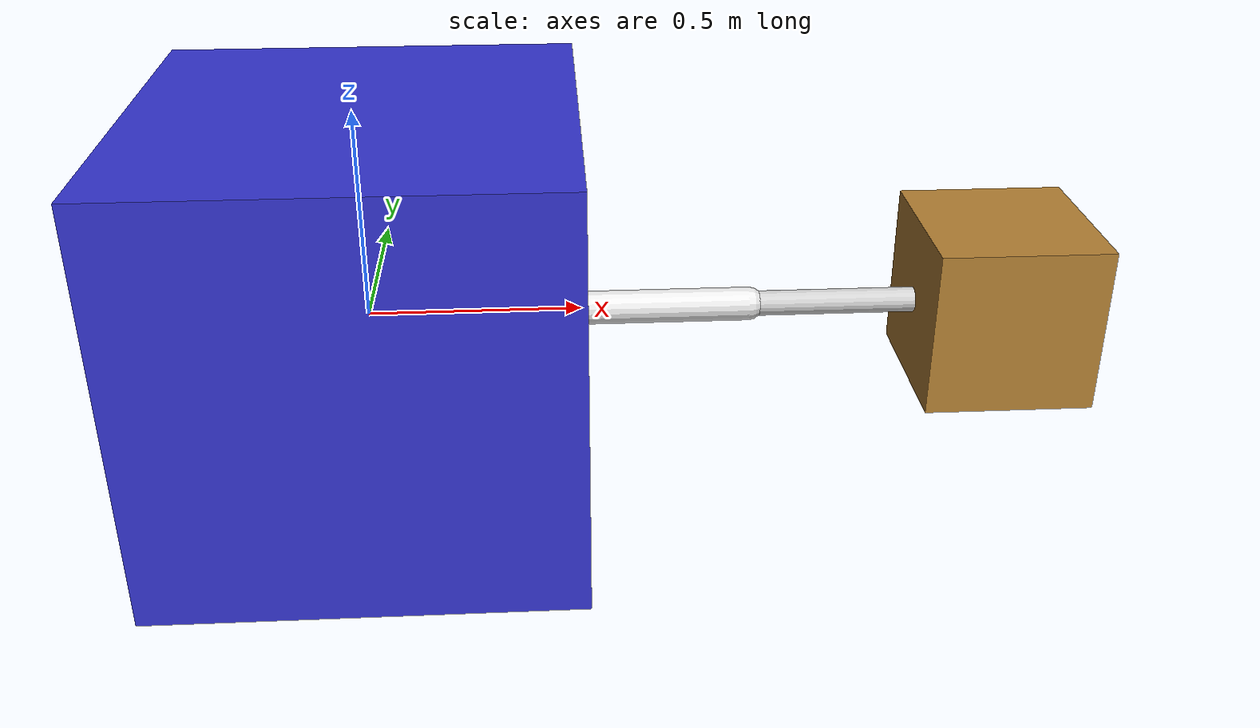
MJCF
<mujoco model="space_debris_manipulator">
  <compiler angle="radian" coordinate="local"/>
  <option gravity="0 0 0" timestep="0.001"/>
  <worldbody>
    <light directional="true" pos="0 0 10" dir="0 0 -1"/>
    <!-- Tumbling Debris Target -->
    <body name="debris" pos="1.5 0 0">
      <freejoint name="debris_joint"/>
      <geom name="debris_geom" type="box" size="0.2 0.2 0.2" rgba="0.7 0.5 0.2 1" mass="15.0"/>
    </body>
    <!-- Chaser Satellite Base -->
    <body name="chaser_satellite" pos="0 0 0">
      <freejoint name="chaser_joint"/>
      <geom name="chaser_body" type="box" size="0.5 0.5 0.5" rgba="0.2 0.2 0.8 1" mass="120.0"/>
      <!-- 3-Link Manipulator Arm -->
      <body name="arm_link1" pos="0.5 0 0">
        <joint name="shoulder_pitch" type="hinge" axis="0 1 0" range="-1.57 1.57"/>
        <geom name="link1_geom" type="capsule" fromto="0 0 0 0.4 0 0" size="0.04" rgba="0.9 0.9 0.9 1" mass="4.0"/>
        <body name="arm_link2" pos="0.4 0 0">
          <joint name="elbow_pitch" type="hinge" axis="0 1 0" range="-2.0 2.0"/>
          <geom name="link2_geom" type="capsule" fromto="0 0 0 0.4 0 0" size="0.03" rgba="0.8 0.8 0.8 1" mass="3.0"/>
        </body>
      </body>
    </body>
  </worldbody>
</mujoco>
